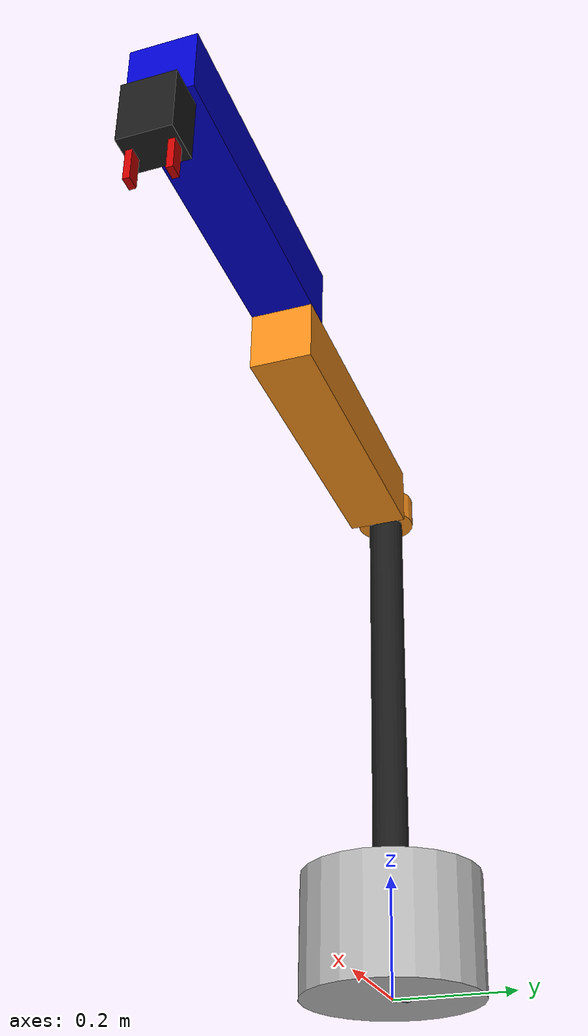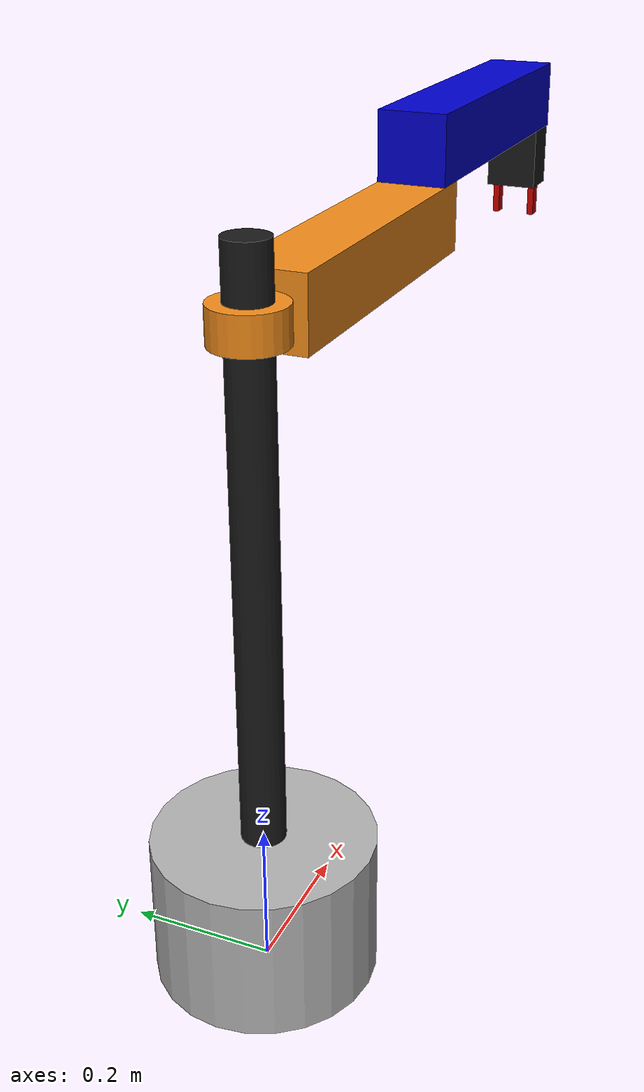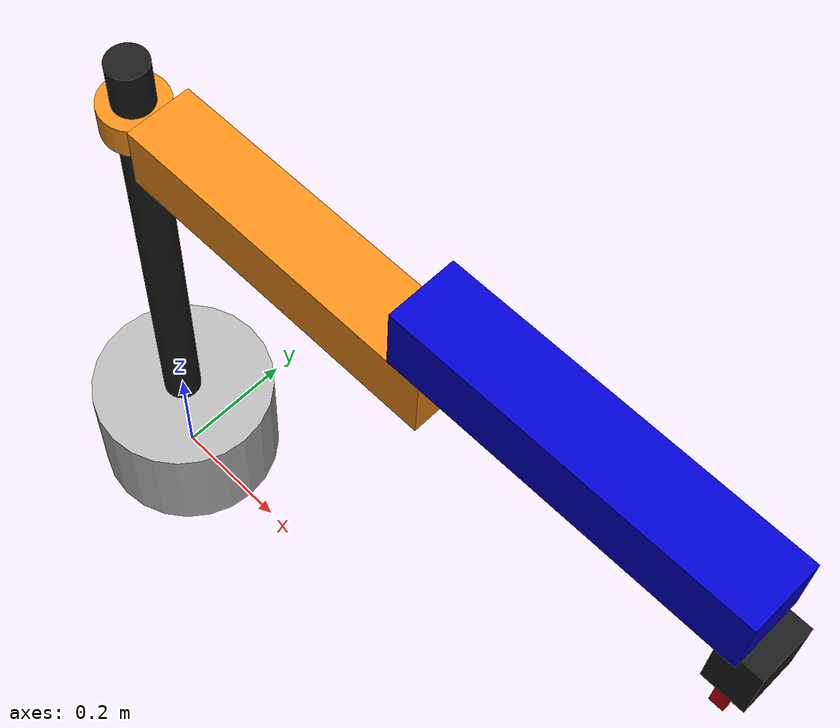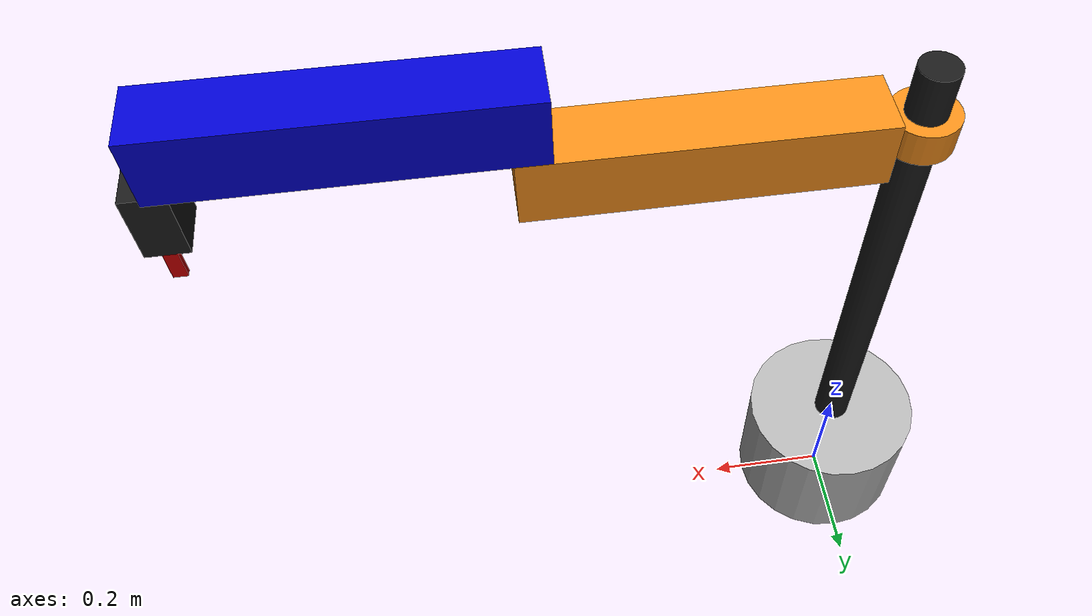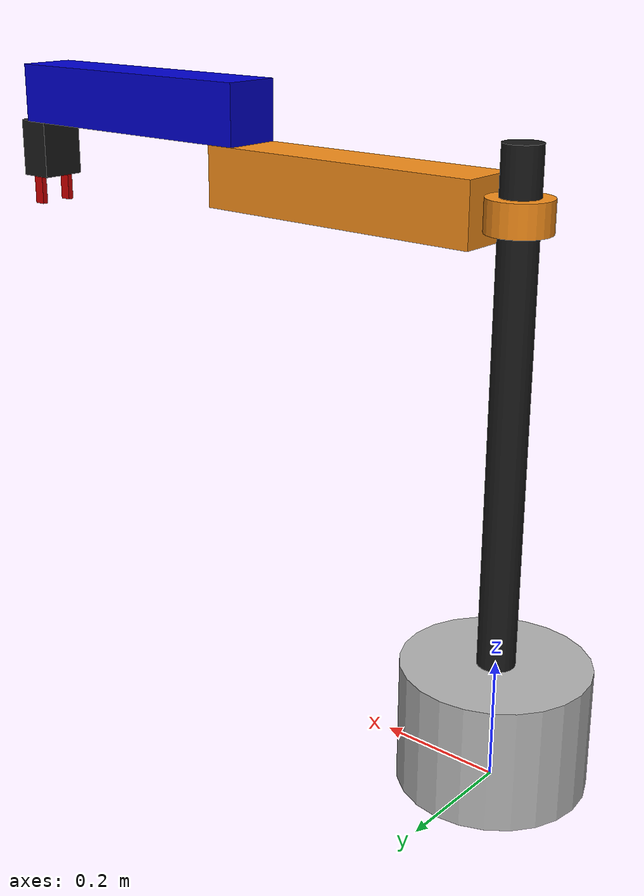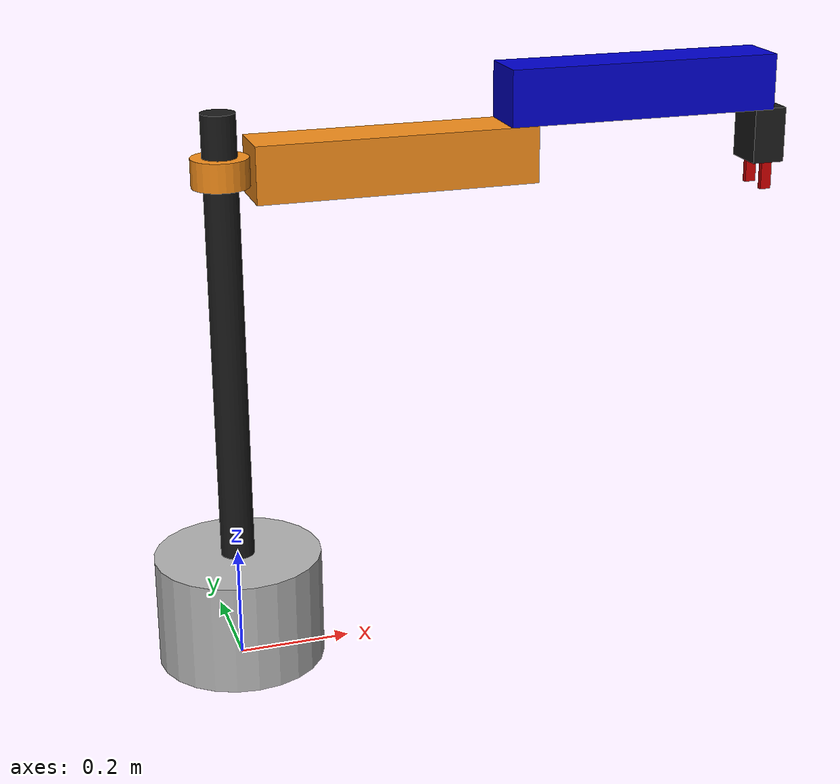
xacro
<?xml version="1.0"?>
<robot name="scara_bot" xmlns:xacro="http://www.ros.org/wiki/xacro">
  <!--
    Simple SCARA Base with Vertical Pole
    Features:
    - Base cylinder
    - Vertical pole as link 1
  -->

  <!-- Material definitions -->
  <material name="metal">
    <color rgba="0.7 0.7 0.7 1.0"/>
  </material>
  <material name="black">
    <color rgba="0.1 0.1 0.1 1.0"/>
  </material>

  <!-- Base Link with Pole -->
  <link name="base_link">
    <!-- Original Base -->
    <visual>
      <origin xyz="0 0 0.1" rpy="0 0 0"/>
      <geometry>
        <cylinder length="0.2" radius="0.15"/>
      </geometry>
      <material name="metal"/>
    </visual>
    <collision>
      <origin xyz="0 0 0.1" rpy="0 0 0"/>
      <geometry>
        <cylinder length="0.2" radius="0.15"/>
      </geometry>
    </collision>

    <!-- Pole Visual -->
    <visual>
      <origin xyz="0 0 0.5" rpy="0 0 0"/>
      <geometry>
        <cylinder length="1.0" radius="0.03"/>
      </geometry>
      <material name="black"/>
    </visual>
    <collision>
      <origin xyz="0 0 0.5" rpy="0 0 0"/>
      <geometry>
        <cylinder length="1.0" radius="0.03"/>
      </geometry>
    </collision>

    <inertial>
      <origin xyz="0 0 0.5" rpy="0 0 0"/>
      <mass value="12"/>
      <inertia ixx="0.5" ixy="0" ixz="0" iyy="0.5" iyz="0" izz="0.1"/>
    </inertial>
  </link>

  <!-- Vertical Prismatic Joint -->
  <joint name="vertical_slider" type="prismatic">
    <origin xyz="0 0 0.9" rpy="0 0 0"/>
    <parent link="base_link"/>
    <child link="vertical_slider_link"/>
    <axis xyz="0 0 1"/>
    <limit lower="-0.6" upper="0" effort="100" velocity="1.0"/>
  </joint>

  <link name="vertical_slider_link">
    <visual>
      <origin xyz="0 0 0" rpy="0 0 0"/>
      <geometry>
        <cylinder length="0.05" radius="0.05"/>
      </geometry>
      <material name="orange"/>
    </visual>
    <collision>
      <origin xyz="0 0 0" rpy="0 0 0"/>
      <geometry>
        <cylinder length="0.1" radius="0.05"/>
      </geometry>
    </collision>
    <inertial>
      <origin xyz="0 0 0" rpy="0 0 0"/>
      <mass value="0.5"/>
      <inertia ixx="0.001" ixy="0" ixz="0" iyy="0.001" iyz="0" izz="0.001"/>
    </inertial>
  </link>

  <!-- First Arm (Horizontal) -->
  <joint name="shoulder_joint" type="revolute">
    <origin xyz="0 0 0" rpy="0 0 0"/>
    <parent link="vertical_slider_link"/>
    <child link="arm1_link"/>
    <axis xyz="0 0 1"/>
    <limit lower="-3.14159" upper="3.14159" effort="100" velocity="1.0"/>
  </joint>

  <link name="arm1_link">
    <visual>
      <origin xyz="0.3 0 0" rpy="0 0 0"/>
      <geometry>
        <box size="0.5 0.1 0.1"/>
      </geometry>
      <material name="orange"/>
    </visual>
    <collision>
      <origin xyz="0.3 0 0" rpy="0 0 0"/>
      <geometry>
        <box size="0.5 0.1 0.1"/>
      </geometry>
    </collision>
    <inertial>
      <origin xyz="0.3 0 0" rpy="0 0 0"/>
      <mass value="1.5"/>
      <inertia ixx="0.01" ixy="0" ixz="0" iyy="0.01" iyz="0" izz="0.01"/>
    </inertial>
  </link>

  <!-- Second Arm (Horizontal) -->
  <joint name="elbow_joint" type="revolute">
    <origin xyz="0.5 0 0" rpy="0 0 0"/>
    <parent link="arm1_link"/>
    <child link="arm2_link"/>
    <axis xyz="0 0 1"/>
    <limit lower="-3.14159" upper="3.14159" effort="100" velocity="1.0"/>
  </joint>

  <link name="arm2_link">
    <visual>
      <origin xyz="0.25 0 0.1" rpy="0 0 0"/>
      <geometry>
        <box size="0.5 0.1 0.1"/>
      </geometry>
      <material name="blue">
        <color rgba="0.0 0.0 0.8 1.0"/>
      </material>
    </visual>
    <collision>
      <origin xyz="0.25 0 0.1" rpy="0 0 0"/>
      <geometry>
        <box size="0.5 0.1 0.1"/>
      </geometry>
    </collision>
    <inertial>
      <origin xyz="0.25 0 0.1" rpy="0 0 0"/>
      <mass value="1.5"/>
      <inertia ixx="0.01" ixy="0" ixz="0" iyy="0.01" iyz="0" izz="0.01"/>
    </inertial>
  </link>

  <!-- Gripper Base -->
  <joint name="gripper_base_joint" type="fixed">
    <origin xyz="0.5 0 0.05" rpy="0 0 0"/>
    <parent link="arm2_link"/>
    <child link="gripper_base"/>
  </joint>

  <link name="gripper_base">
    <visual>
      <origin xyz="0 0 -0.05" rpy="0 0 0"/>
      <geometry>
        <box size="0.06 0.08 0.1"/>
      </geometry>
      <material name="black"/>
    </visual>
    <collision>
      <origin xyz="0 0 -0.05" rpy="0 0 0"/>
      <geometry>
        <box size="0.1 0.06 0.06"/>
      </geometry>
    </collision>
    <inertial>
      <origin xyz="0 0 -0.05" rpy="0 0 0"/>
      <mass value="0.2"/>
      <inertia ixx="0.0001" ixy="0" ixz="0" iyy="0.0001" iyz="0" izz="0.0001"/>
    </inertial>
  </link>

  <!-- Left Finger -->
  <joint name="left_finger_joint" type="prismatic">
    <origin xyz="0 0.03 -0.1" rpy="0 0 0"/>
    <parent link="gripper_base"/>
    <child link="left_finger"/>
    <axis xyz="0 1 0"/>
    <limit lower="0" upper="0.04" effort="20" velocity="0.5"/>
  </joint>

  <link name="left_finger">
    <visual>
      <origin xyz="0 0 -0.025" rpy="0 0 0"/>
      <geometry>
        <box size="0.02 0.01 0.05"/>
      </geometry>
      <material name="red">
        <color rgba="0.8 0.0 0.0 1.0"/>
      </material>
    </visual>
    <collision>
      <origin xyz="0 0 -0.025" rpy="0 0 0"/>
      <geometry>
        <box size="0.02 0.01 0.05"/>
      </geometry>
    </collision>
    <inertial>
      <origin xyz="0 0 -0.025" rpy="0 0 0"/>
      <mass value="0.05"/>
      <inertia ixx="0.00001" ixy="0" ixz="0" iyy="0.00001" iyz="0" izz="0.00001"/>
    </inertial>
  </link>

  <!-- Right Finger -->
  <joint name="right_finger_joint" type="prismatic">
    <origin xyz="0 -0.03 -0.1" rpy="0 0 0"/>
    <parent link="gripper_base"/>
    <child link="right_finger"/>
    <axis xyz="0 -1 0"/>
    <limit lower="0" upper="0.04" effort="20" velocity="0.5"/>
  </joint>

  <link name="right_finger">
    <visual>
      <origin xyz="0 0 -0.025" rpy="0 0 0"/>
      <geometry>
        <box size="0.02 0.01 0.05"/>
      </geometry>
      <material name="red">
        <color rgba="0.8 0.0 0.0 1.0"/>
      </material>
    </visual>
    <collision>
      <origin xyz="0 0 -0.025" rpy="0 0 0"/>
      <geometry>
        <box size="0.02 0.01 0.05"/>
      </geometry>
    </collision>
    <inertial>
      <origin xyz="0 0 -0.025" rpy="0 0 0"/>
      <mass value="0.05"/>
      <inertia ixx="0.00001" ixy="0" ixz="0" iyy="0.00001" iyz="0" izz="0.00001"/>
    </inertial>
  </link>

  <!-- Transmission for the revolute joint -->
  <xacro:macro name="transmission_block" params="joint_name">
    <transmission name="${joint_name}_trans">
      <type>transmission_interface/SimpleTransmission</type>
      <joint name="${joint_name}">
        <hardwareInterface>hardware_interface/EffortJointInterface</hardwareInterface>
      </joint>
      <actuator name="${joint_name}_motor">
        <hardwareInterface>hardware_interface/EffortJointInterface</hardwareInterface>
        <mechanicalReduction>1</mechanicalReduction>
      </actuator>
    </transmission>
  </xacro:macro>

  <xacro:transmission_block joint_name="vertical_slider"/>
  <xacro:transmission_block joint_name="shoulder_joint"/>
  <xacro:transmission_block joint_name="elbow_joint"/>
  <xacro:transmission_block joint_name="left_finger_joint"/>
  <xacro:transmission_block joint_name="right_finger_joint"/>

  <!-- Gazebo ROS Control Plugin -->
  <gazebo>
    <plugin name="gazebo_ros_control" filename="libgazebo_ros_control.so">
      <robotNamespace>/</robotNamespace>
    </plugin>
  </gazebo>
</robot>
